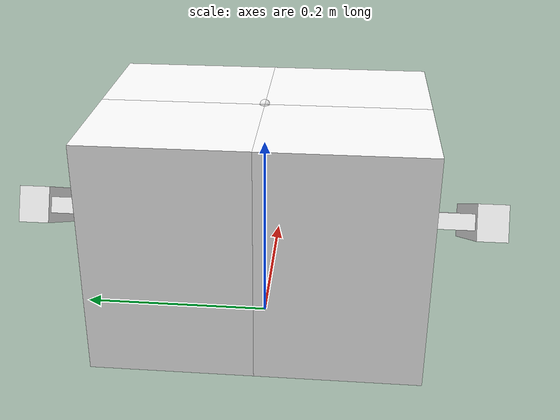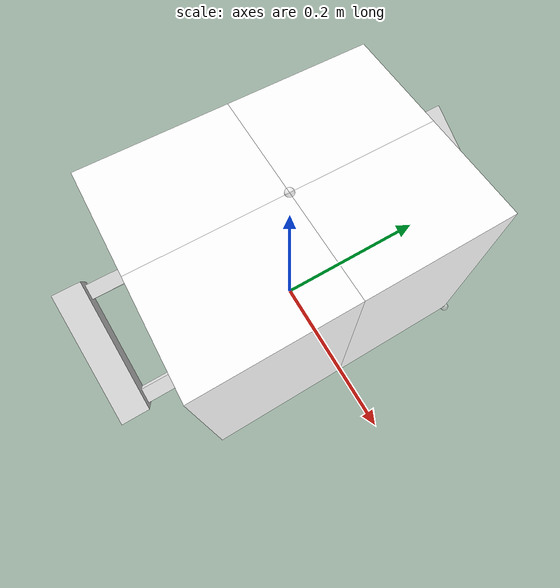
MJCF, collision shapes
<mujoco model="cardbox_a1">
  <default>
    <default class="visual">
      <geom group="1" type="mesh" contype="0" conaffinity="0" density="100"/>
    </default>
    <default class="collision">
      <geom group="0" type="mesh" density="100" solimp="0.95 0.98 0.001" solref="0.004 1" rgba="1 1 1 0.25"/>
    </default>
  </default>
  <asset>
    <texture type="2d" name="T_Cardbox_A1_Albedo" file="textures/T_Cardbox_A1_Albedo.png"/>
    <material name="Cardboard_A" texture="T_Cardbox_A1_Albedo" specular="0.5" shininess="0.25"/>
    <mesh file="meshes/cardbox_a1.obj" name="cardbox_a1"/>
    <mesh file="meshes/handle.obj" name="handle"/>
    <mesh file="meshes/handle_mirror.obj" name="handle_mirror"/>
  </asset>
  <worldbody>
    <body>
      <body name="object">
        <geom material="Cardboard_A" mesh="cardbox_a1" class="visual"/>
        <geom type="box" pos="-0.06124296158420828 0.0823374589039666 0.12043633342869287" size="0.11989854814448268 0.061371401217758345 0.0823902606847455" quat="0.5001817280003483 0.5001993434949776 0.49967233690804047 -0.49994640859859846" class="collision"/>
        <geom type="box" pos="-0.06129104205382395 -0.0824430500368552 0.12047857409014195" size="0.11989854814448268 0.061371401217758345 0.0823902606847455" quat="0.5001817280003483 0.5001993434949776 0.49967233690804047 -0.49994640859859846" class="collision"/>
        <geom type="box" pos="0.06149979996431068 0.08230166840300479 0.12052990803923899" size="0.11989854814448268 0.061371401217758345 0.0823902606847455" quat="0.5001817280003483 0.5001993434949776 0.49967233690804047 -0.49994640859859846" class="collision"/>
        <geom type="box" pos="0.06145171949469501 -0.08247884053781701 0.12057214870068808" size="0.11989854814448268 0.061371401217758345 0.0823902606847455" quat="0.5001817280003483 0.5001993434949776 0.49967233690804047 -0.49994640859859846" class="collision"/>
        <body name="handle_1" pos="0 0.228 0.12" quat="0.9743701 0 0.2249511 0">
          <geom mesh="handle" class="visual" rgba="0.2 0.2 0.2 1.0"/>
          <geom type="box" pos="-0.059047845301811265 -0.045 0" size="0.008 0.008 0.025" quat="0.5046660647935649 0.504706234998332 -0.4952490447782901 0.49528997874556036" class="collision"/>
          <geom type="box" pos="0.06188433419671608 -0.045 0" size="0.008 0.008 0.025" quat="0.5046660647935649 0.504706234998332 -0.4952490447782901 0.49528997874556036" class="collision"/>
          <geom type="box" pos="0.00145 -0.004 0" size="0.073 0.015 0.018" class="collision"/>
        </body>
        <body name="handle_2" pos="0 -0.228 0.12" quat="0.9743701 0 0.2249511 0">
          <geom mesh="handle_mirror" class="visual" rgba="0.2 0.2 0.2 1.0"/>
          <geom type="box" pos="-0.059047845301811265 0.045 0" size="0.008 0.008 0.025" quat="0.5046660647935649 0.504706234998332 -0.4952490447782901 0.49528997874556036" class="collision"/>
          <geom type="box" pos="0.06188433419671608 0.045 0" size="0.008 0.008 0.025" quat="0.5046660647935649 0.504706234998332 -0.4952490447782901 0.49528997874556036" class="collision"/>
          <geom type="box" pos="0.00145 0.004 0" size="0.073 0.015 0.018" class="collision"/>
        </body>
      </body>
      <site name="bottom_site" pos="0 0 0.000556" rgba="1 1 1 0.5" size="0.005"/>
      <site name="top_site" pos="0 0 0.240352" rgba="1 1 1 0.5" size="0.005"/>
      <site name="horizontal_radius_site" pos="0.122875 0.164772 0" rgba="1 1 1 0.5" size="0.005"/>
    </body>
  </worldbody>
</mujoco>
